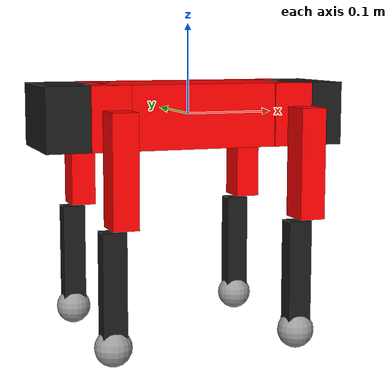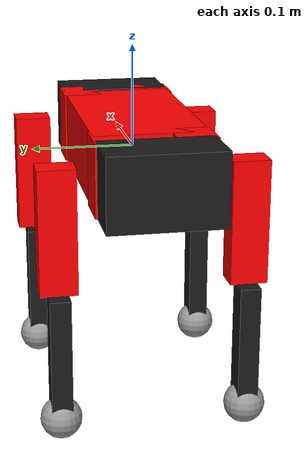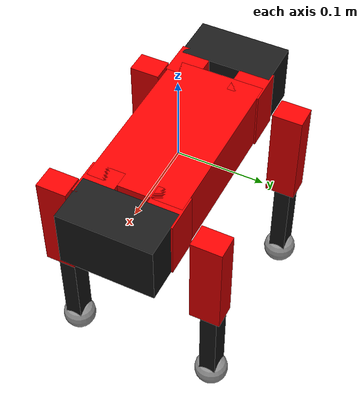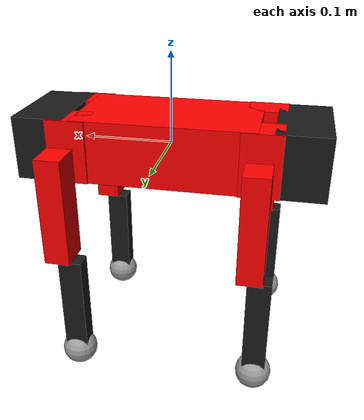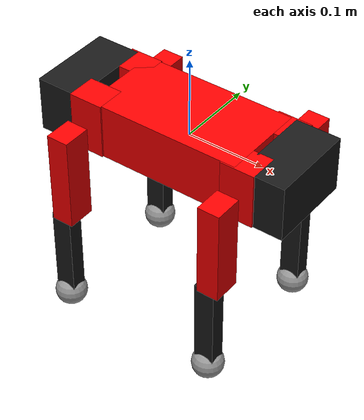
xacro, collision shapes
<?xml version="1.0" ?>
<!-- |    This document was autogenerated by xacro from spotmicroean.urdf.xacro        | -->
<!-- |    EDITING THIS FILE BY HAND IS NOT RECOMMENDED                                 | -->
<robot name="SpotMicroAI">
  <material name="red">
    <color rgba="1.0 0.0 0.0 1"/>
  </material>
  <material name="black">
    <color rgba="0.1 0.1 0.1 1"/>
  </material>
  <material name="grey">
    <color rgba="0.6 0.6 0.6 1"/>
  </material>
  <!-- Params -->
  <!-- Macros -->
  <!-- Robot Body -->
  <link name="base_link">
    <visual>
      <geometry>
        <mesh filename="file://$(find old_spot_files)/meshes/stl_ean/STL/Base.STL" scale="0.001 0.001 0.001"/>
      </geometry>
      <material name="red"/>
      <origin rpy="0 0 -1.5707" xyz="-0.135 0.055 -0.032"/>
    </visual>
    <collision>
      <geometry>
        <box size="0.2 0.11 0.07"/>
      </geometry>
      <origin rpy="0 0 0" xyz="0 0 0"/>
    </collision>
    <inertial>
      <mass value="0.94447"/>
      <inertia ixx="0.00387805268" ixy="-0.00003434884" ixz="-0.000016961.6" iyy="0.00109473849" iyz="0.00031562911" izz="0.00409615181"/>
    </inertial>
  </link>
  <link name="rear_link">
    <visual>
      <geometry>
        <mesh filename="file://$(find old_spot_files)/meshes/stl_ean/STL/bottom.STL" scale="0.001 0.001 0.001"/>
      </geometry>
      <origin rpy="0 0 -1.5707" xyz="-0.105 0.055 -0.034"/>
      <material name="black"/>
    </visual>
    <collision>
      <geometry>
        <box size="0.057 0.11 0.07"/>
      </geometry>
      <origin rpy="0 0 0" xyz="0.135 0 0"/>
    </collision>
    <inertial>
      <mass value="0.13415"/>
      <inertia ixx="0.00232587491" ixy="0.00000216754" ixz="-0.00000449969" iyy="0.00028517681" iyz="0.00020709387" izz="0.00238553813"/>
    </inertial>
  </link>
  <joint name="base_rear" type="fixed">
    <parent link="base_link"/>
    <child link="rear_link"/>
  </joint>
  <link name="front_link">
    <visual>
      <geometry>
        <mesh filename="file://$(find old_spot_files)/meshes/stl_ean/STL/top.STL" scale="0.001 0.001 0.001"/>
      </geometry>
      <origin rpy="0 0 -1.5707" xyz="-0.185 0.065 -0.033"/>
      <material name="black"/>
    </visual>
    <collision>
      <geometry>
        <box size="0.058 0.11 0.07"/>
      </geometry>
      <origin rpy="0 0 0" xyz="-0.145 0 0"/>
    </collision>
    <inertial>
      <mass value="0.71111"/>
      <inertia ixx="0.01411887885" ixy="0.00503508247" ixz="0.00329443443" iyy="0.00738644691" iyz="0.0057782151" izz="0.01388095362"/>
    </inertial>
  </link>
  <joint name="base_front" type="fixed">
    <parent link="base_link"/>
    <child link="front_link"/>
  </joint>
  <!-- create Legs -->
  <link name="front_left_shoulder_link">
    <visual>
      <geometry>
        <mesh filename="file://$(find old_spot_files)/meshes/stl_ean/STL/left_fordward_right_backward_shoulder.STL" scale="0.001 0.001 0.001"/>
      </geometry>
      <origin rpy="-1.5707 3.1416 0" xyz="0.028 -0.03 -0.029"/>
      <material name="red"/>
    </visual>
    <collision>
      <geometry>
        <box size="0.044 0.038 0.07"/>
      </geometry>
      <origin rpy="0 0 0" xyz="0 0 0"/>
    </collision>
    <inertial>
      <mass value="0.11427"/>
      <inertia ixx="0.00003172169" ixy="-0.00000014527" ixz="0.00000432731" iyy="0.00005316718" iyz="-0.000000500" izz="0.00006588791"/>
    </inertial>
  </link>
  <link name="front_left_leg_link">
    <visual>
      <geometry>
        <mesh filename="file://$(find old_spot_files)/meshes/stl_ean/STL/left_arm.STL" scale="0.001 0.001 0.001"/>
      </geometry>
      <origin rpy="3.1416 -1.8 0" xyz="-0.02 0.025 -0.132"/>
      <material name="red"/>
    </visual>
    <collision>
      <origin rpy="0.0 0.0 0.0" xyz="0.0 0.0 -0.050"/>
      <geometry>
        <box size="0.028 0.036 0.12"/>
      </geometry>
    </collision>
    <inertial>
      <mass value="0.1942"/>
      <inertia ixx="0.00020999903" ixy="0.00033247456" ixz="0.0002163401" iyy="0.00136287772" iyz="0.00006388282" izz="0.00146174584"/>
    </inertial>
  </link>
  <link name="front_left_foot_link">
    <visual>
      <geometry>
        <mesh filename="file://$(find old_spot_files)/meshes/stl_ean/STL/left_wrist.STL" scale="0.001 0.001 0.001"/>
      </geometry>
      <origin rpy="1.5708 -1.5708 0" xyz="0.023 0.018 -.133"/>
      <material name="black"/>
    </visual>
    <collision>
      <geometry>
        <box size="0.026 0.020 0.115"/>
      </geometry>
      <origin rpy="0.0 0.0 0.0" xyz="0.0 0.0 -0.050"/>
    </collision>
    <inertial>
      <mass value="0.1452"/>
      <inertia ixx="0.00007223092" ixy="0.00001951089" ixz="0.00001265811" iyy="0.00027840078" iyz="0.00002203829" izz="0.00028998349"/>
    </inertial>
  </link>
  <link name="front_left_toe_link">
    <visual>
      <geometry>
        <mesh filename="file://$(find old_spot_files)/meshes/stl_ean/STL/Foot_Tip.STL" scale="0.001 0.001 0.001"/>
      </geometry>
      <origin rpy="0 2.35 0" xyz="0.00 0 0"/>
      <material name="grey"/>
    </visual>
    <collision>
      <geometry>
        <sphere radius="0.02"/>
      </geometry>
      <origin rpy="0 0 0" xyz="0 0 0"/>
      <contact_coefficients mu="1.1"/>
    </collision>
    <inertial>
      <mass value="0.0"/>
      <inertia ixx="0.0" ixy="0.0" ixz="0.0" iyy="0.0" iyz="0.0" izz="0.0"/>
    </inertial>
  </link>

  <joint name="joint_front_left_shoulder" type="revolute">
    <parent link="base_link"/>
    <child link="front_left_shoulder_link"/>
    <axis xyz="1 0 0"/>
    <origin rpy="0 0 0" xyz="-0.104 -0.038 0"/>
    <limit effort="1000.0" lower="-0.548" upper="0.548" velocity="0.7"/>
    <dynamics damping="0.0" friction="0.5"/>
  </joint>
  <joint name="joint_front_left_leg" type="revolute">
    <parent link="front_left_shoulder_link"/>
    <child link="front_left_leg_link"/>
    <axis xyz="0 1 0"/>
    <origin rpy="0 0 0" xyz="0 -0.052 0"/>
    <limit effort="1000.0" lower="-2.666" upper="1.548" velocity="0.5"/>
    <dynamics damping="0.0" friction="0.0"/>
  </joint>
  <joint name="joint_front_left_foot" type="revolute">
    <parent link="front_left_leg_link"/>
    <child link="front_left_foot_link"/>
    <axis xyz="0 1 0"/>
    <origin rpy="0 0 0" xyz="-0.01 0 -0.12"/>
    <limit effort="1000.0" lower="-0.1" upper="2.59" velocity="0.5"/>
    <dynamics damping="0.0" friction="0.5"/>
  </joint>
  <joint name="joint_front_left_toe" type="fixed">
    <parent link="front_left_foot_link"/>
    <child link="front_left_toe_link"/>
    <origin xyz="0 0 -0.115"/>
  </joint>

  <link name="front_right_shoulder_link">
    <visual>
      <geometry>
        <mesh filename="file://$(find old_spot_files)/meshes/stl_ean/STL/right_fordward_left_backward_shoulder.STL" scale="0.001 0.001 0.001"/>
      </geometry>
      <origin rpy="1.5707 0 0" xyz="-0.028 0.03 -0.027"/>
      <material name="red"/>
    </visual>
    <collision>
      <geometry>
        <box size="0.044 0.038 0.07"/>
      </geometry>
      <origin rpy="0 0 0" xyz="0 0 0"/>
    </collision>
    <inertial>
      <mass value="0.11427"/>
      <inertia ixx="0.00004878868" ixy="-0.0000003775" ixz="-0.00000017136" iyy="0.00004225848" iyz="-0.000000434" izz="0.00003791423"/>
    </inertial>
  </link>
  <link name="front_right_leg_link">
    <visual>
      <geometry>
        <mesh filename="file://$(find old_spot_files)/meshes/stl_ean/STL/right_arm.STL" scale="0.001 0.001 0.001"/>
      </geometry>
      <origin rpy="3.1416 -1.8 0" xyz="-0.02 0.039 -0.132"/>
      <material name="red"/>
    </visual>
    <collision>
      <origin rpy="0.0 0.0 0.0" xyz="0.0 0.0 -0.050"/>
      <geometry>
        <box size="0.028 0.036 0.12"/>
      </geometry>
    </collision>
    <inertial>
      <mass value="0.19412"/>
      <inertia ixx="0.00010075846" ixy="0.00001174271" ixz="0.00002227477" iyy="0.00028245225" iyz="-0.00000610061" izz="0.00027215429"/>
    </inertial>
  </link>
  <link name="front_right_foot_link">
    <visual>
      <geometry>
        <mesh filename="file://$(find old_spot_files)/meshes/stl_ean/STL/right_wrist.STL" scale="0.001 0.001 0.001"/>
      </geometry>
      <origin rpy="-1.5708 -1.5708 0" xyz="-0.013 -0.018 -.133"/>
      <material name="black"/>
    </visual>
    <collision>
      <geometry>
        <box size="0.026 0.020 0.115"/>
      </geometry>
      <origin rpy="0.0 0.0 0.0" xyz="0.0 0.0 -0.050"/>
    </collision>
    <inertial>
      <mass value="0.14521"/>
      <inertia ixx="0.00003908063" ixy="-0.00000081436" ixz="0.00003886203" iyy="0.0003689475" iyz="-0.00000004347" izz="0.00034737965"/>
    </inertial>
  </link>
  <link name="front_right_toe_link">
    <visual>
      <geometry>
        <mesh filename="file://$(find old_spot_files)/meshes/stl_ean/STL/Foot_Tip.STL" scale="0.001 0.001 0.001"/>
      </geometry>
      <origin rpy="0 2.35 0" xyz="0.00 0 0"/>
      <material name="grey"/>
    </visual>
    <collision>
      <geometry>
        <sphere radius="0.02"/>
      </geometry>
      <origin rpy="0 0 0" xyz="0 0 0"/>
      <contact_coefficients mu="1.1"/>
    </collision>
    <inertial>
      <mass value="0.0"/>
      <inertia ixx="0.0" ixy="0.0" ixz="0.0" iyy="0.0" iyz="0.0" izz="0.0"/>
    </inertial>
  </link>

  <joint name="joint_front_right_shoulder" type="revolute">
    <parent link="base_link"/>
    <child link="front_right_shoulder_link"/>
    <axis xyz="1 0 0"/>
    <origin rpy="0 0 0" xyz="-0.104 0.038 0"/>
    <limit effort="1000.0" lower="-0.548" upper="0.548" velocity="0.7"/>
    <dynamics damping="0.0" friction="0.5"/>
  </joint>
  <joint name="joint_front_right_leg" type="revolute">
    <parent link="front_right_shoulder_link"/>
    <child link="front_right_leg_link"/>
    <axis xyz="0 1 0"/>
    <origin rpy="0 0 0" xyz="0 0.052 0"/>
    <limit effort="1000.0" lower="-2.666" upper="1.548" velocity="0.5"/>
    <dynamics damping="0.0" friction="0.0"/>
  </joint>
  <joint name="joint_front_right_foot" type="revolute">
    <parent link="front_right_leg_link"/>
    <child link="front_right_foot_link"/>
    <axis xyz="0 1 0"/>
    <origin rpy="0 0 0" xyz="-0.01 0 -0.12"/>
    <limit effort="1000.0" lower="-0.1" upper="2.59" velocity="0.5"/>
    <dynamics damping="0.0" friction="0.5"/>
  </joint>
  <joint name="joint_front_right_toe" type="fixed">
    <parent link="front_right_foot_link"/>
    <child link="front_right_toe_link"/>
    <origin xyz="0 0 -0.115"/>
  </joint>

  <link name="rear_left_shoulder_link">
    <visual>
      <geometry>
        <mesh filename="file://$(find old_spot_files)/meshes/stl_ean/STL/left_fordward_right_backward_shoulder.STL" scale="0.001 0.001 0.001"/>
      </geometry>
      <origin rpy="-1.5707 3.1416 0" xyz="0.028 -0.03 -0.029"/>
      <material name="red"/>
    </visual>
    <collision>
      <geometry>
        <box size="0.044 0.038 0.07"/>
      </geometry>
      <origin rpy="0 0 0" xyz="0 0 0"/>
    </collision>
    <inertial>
      <mass value="0.11427"/>
      <inertia ixx="0.00003172169" ixy="-0.00000014527" ixz="0.00000432731" iyy="0.00005316718" iyz="-0.000000500" izz="0.00006588791"/>
    </inertial>
  </link>
  <link name="rear_left_leg_link">
    <visual>
      <geometry>
        <mesh filename="file://$(find old_spot_files)/meshes/stl_ean/STL/left_arm.STL" scale="0.001 0.001 0.001"/>
      </geometry>
      <origin rpy="3.1416 -1.8 0" xyz="-0.02 0.025 -0.132"/>
      <material name="red"/>
    </visual>
    <collision>
      <origin rpy="0.0 0.0 0.0" xyz="0.0 0.0 -0.050"/>
      <geometry>
        <box size="0.028 0.036 0.12"/>
      </geometry>
    </collision>
    <inertial>
      <mass value="0.1942"/>
      <inertia ixx="0.00020999903" ixy="0.00033247456" ixz="0.0002163401" iyy="0.00136287772" iyz="0.00006388282" izz="0.00146174584"/>
    </inertial>
  </link>
  <link name="rear_left_foot_link">
    <visual>
      <geometry>
        <mesh filename="file://$(find old_spot_files)/meshes/stl_ean/STL/left_wrist.STL" scale="0.001 0.001 0.001"/>
      </geometry>
      <origin rpy="1.5708 -1.5708 0" xyz="0.023 0.018 -.133"/>
      <material name="black"/>
    </visual>
    <collision>
      <geometry>
        <box size="0.026 0.020 0.115"/>
      </geometry>
      <origin rpy="0.0 0.0 0.0" xyz="0.0 0.0 -0.050"/>
    </collision>
    <inertial>
      <mass value="0.1452"/>
      <inertia ixx="0.00007223092" ixy="0.00001951089" ixz="0.00001265811" iyy="0.00027840078" iyz="0.00002203829" izz="0.00028998349"/>
    </inertial>
  </link>
  <link name="rear_left_toe_link">
    <visual>
      <geometry>
        <mesh filename="file://$(find old_spot_files)/meshes/stl_ean/STL/Foot_Tip.STL" scale="0.001 0.001 0.001"/>
      </geometry>
      <origin rpy="0 2.35 0" xyz="0.00 0 0"/>
      <material name="grey"/>
    </visual>
    <collision>
      <geometry>
        <sphere radius="0.02"/>
      </geometry>
      <origin rpy="0 0 0" xyz="0 0 0"/>
      <contact_coefficients mu="1.1"/>
    </collision>
    <inertial>
      <mass value="0.0"/>
      <inertia ixx="0.0" ixy="0.0" ixz="0.0" iyy="0.0" iyz="0.0" izz="0.0"/>
    </inertial>
  </link>

  <joint name="joint_rear_left_shoulder" type="revolute">
    <parent link="base_link"/>
    <child link="rear_left_shoulder_link"/>
    <axis xyz="1 0 0"/>
    <origin rpy="0 0 0" xyz="0.104 -0.038 0"/>
    <limit effort="1000.0" lower="-0.548" upper="0.548" velocity="0.7"/>
    <dynamics damping="0.0" friction="0.5"/>
  </joint>
  <joint name="joint_rear_left_leg" type="revolute">
    <parent link="rear_left_shoulder_link"/>
    <child link="rear_left_leg_link"/>
    <axis xyz="0 1 0"/>
    <origin rpy="0 0 0" xyz="0 -0.052 0"/>
    <limit effort="1000.0" lower="-2.666" upper="1.548" velocity="0.5"/>
    <dynamics damping="0.0" friction="0.0"/>
  </joint>
  <joint name="joint_rear_left_foot" type="revolute">
    <parent link="rear_left_leg_link"/>
    <child link="rear_left_foot_link"/>
    <axis xyz="0 1 0"/>
    <origin rpy="0 0 0" xyz="-0.01 0 -0.12"/>
    <limit effort="1000.0" lower="-0.1" upper="2.59" velocity="0.5"/>
    <dynamics damping="0.0" friction="0.5"/>
  </joint>
  <joint name="joint_rear_left_toe" type="fixed">
    <parent link="rear_left_foot_link"/>
    <child link="rear_left_toe_link"/>
    <origin xyz="0 0 -0.115"/>
  </joint>

  <link name="rear_right_shoulder_link">
    <visual>
      <geometry>
        <mesh filename="file://$(find old_spot_files)/meshes/stl_ean/STL/right_fordward_left_backward_shoulder.STL" scale="0.001 0.001 0.001"/>
      </geometry>
      <origin rpy="1.5707 0 0" xyz="-0.028 0.03 -0.027"/>
      <material name="red"/>
    </visual>
    <collision>
      <geometry>
        <box size="0.044 0.038 0.07"/>
      </geometry>
      <origin rpy="0 0 0" xyz="0 0 0"/>
    </collision>
    <inertial>
      <mass value="0.11427"/>
      <inertia ixx="0.00004878868" ixy="-0.0000003775" ixz="-0.00000017136" iyy="0.00004225848" iyz="-0.000000434" izz="0.00003791423"/>
    </inertial>
  </link>
  <link name="rear_right_leg_link">
    <visual>
      <geometry>
        <mesh filename="file://$(find old_spot_files)/meshes/stl_ean/STL/right_arm.STL" scale="0.001 0.001 0.001"/>
      </geometry>
      <origin rpy="3.1416 -1.8 0" xyz="-0.02 0.039 -0.132"/>
      <material name="red"/>
    </visual>
    <collision>
      <origin rpy="0.0 0.0 0.0" xyz="0.0 0.0 -0.050"/>
      <geometry>
        <box size="0.028 0.036 0.12"/>
      </geometry>
    </collision>
    <inertial>
      <mass value="0.19412"/>
      <inertia ixx="0.00010075846" ixy="0.00001174271" ixz="0.00002227477" iyy="0.00028245225" iyz="-0.00000610061" izz="0.00027215429"/>
    </inertial>
  </link>
  <link name="rear_right_foot_link">
    <visual>
      <geometry>
        <mesh filename="file://$(find old_spot_files)/meshes/stl_ean/STL/right_wrist.STL" scale="0.001 0.001 0.001"/>
      </geometry>
      <origin rpy="-1.5708 -1.5708 0" xyz="-0.013 -0.018 -.133"/>
      <material name="black"/>
    </visual>
    <collision>
      <geometry>
        <box size="0.026 0.020 0.115"/>
      </geometry>
      <origin rpy="0.0 0.0 0.0" xyz="0.0 0.0 -0.050"/>
    </collision>
    <inertial>
      <mass value="0.14521"/>
      <inertia ixx="0.00003908063" ixy="-0.00000081436" ixz="0.00003886203" iyy="0.0003689475" iyz="-0.00000004347" izz="0.00034737965"/>
    </inertial>
  </link>
  <link name="rear_right_toe_link">
    <visual>
      <geometry>
        <mesh filename="file://$(find old_spot_files)/meshes/stl_ean/STL/Foot_Tip.STL" scale="0.001 0.001 0.001"/>
      </geometry>
      <origin rpy="0 2.35 0" xyz="0.00 0 0"/>
      <material name="grey"/>
    </visual>
    <collision>
      <geometry>
        <sphere radius="0.02"/>
      </geometry>
      <origin rpy="0 0 0" xyz="0 0 0"/>
      <contact_coefficients mu="1.1"/>
    </collision>
    <inertial>
      <mass value="0.0"/>
      <inertia ixx="0.0" ixy="0.0" ixz="0.0" iyy="0.0" iyz="0.0" izz="0.0"/>
    </inertial>
  </link>

  <joint name="joint_rear_right_shoulder" type="revolute">
    <parent link="base_link"/>
    <child link="rear_right_shoulder_link"/>
    <axis xyz="1 0 0"/>
    <origin rpy="0 0 0" xyz="0.104 0.038 0"/>
    <limit effort="1000.0" lower="-0.548" upper="0.548" velocity="0.7"/>
    <dynamics damping="0.0" friction="0.5"/>
  </joint>
  <joint name="joint_rear_right_leg" type="revolute">
    <parent link="rear_right_shoulder_link"/>
    <child link="rear_right_leg_link"/>
    <axis xyz="0 1 0"/>
    <origin rpy="0 0 0" xyz="0 0.052 0"/>
    <limit effort="1000.0" lower="-2.666" upper="1.548" velocity="0.5"/>
    <dynamics damping="0.0" friction="0.0"/>
  </joint>
  <joint name="joint_rear_right_foot" type="revolute">
    <parent link="rear_right_leg_link"/>
    <child link="rear_right_foot_link"/>
    <axis xyz="0 1 0"/>
    <origin rpy="0 0 0" xyz="-0.01 0 -0.12"/>
    <limit effort="1000.0" lower="-0.1" upper="2.59" velocity="0.5"/>
    <dynamics damping="0.0" friction="0.5"/>
  </joint>
  <joint name="joint_rear_right_toe" type="fixed">
    <parent link="rear_right_foot_link"/>
    <child link="rear_right_toe_link"/>
    <origin xyz="0 0 -0.115"/>
  </joint>

  <!-- Gazebo-->
  <gazebo reference="base_link">
    <material>Gazebo/FlatBlack</material>
  </gazebo>
  <gazebo reference="rear_link">
    <material>Gazebo/Yellow</material>
  </gazebo>

  <gazebo reference="front_link">
    <material>Gazebo/Yellow</material>
  </gazebo>

  <gazebo reference="lidar_link">
    <sensor name="hokuyo" type="ray">
      <always_on>true</always_on>
      <update_rate>30</update_rate>
      <pose>0 0 0 0 0 0</pose>
      <visualize>false</visualize>
      <ray>
        <scan>
          <horizontal>
            <samples>1040</samples>
            <resolution>1</resolution>
            <min_angle>2.2689280275926285</min_angle>
            <max_angle>-2.2689280275926285</max_angle>
          </horizontal>
        </scan>
        <range>
          <min>0.2</min>
          <max>30.0</max>
          <resolution>0.01</resolution>
        </range>
        <noise>
          <type>gaussian</type>
          <mean>0.0</mean>
          <stddev>0.004</stddev>
        </noise>
      </ray>
      <plugin filename="libgazebo_ros_ray_sensor.so" name="gazebo_ros_hokuyo_controller">
        <ros>
          <namespace>lidar_link</namespace>
          <argument>~/out:=scan</argument>
        </ros>
        <!-- Set output to sensor_msgs/PointCloud to get same output type as gazebo_ros_block_laser -->
        <output_type>sensor_msgs/LaserScan</output_type>
        <!-- min_intensity instead of hokuyoMinIntensity -->
        <min_intensity>100.0</min_intensity>
      </plugin>
    </sensor>
  </gazebo>

  <gazebo reference="lidar_link">
    <material>Gazebo/Black</material>
  </gazebo>

  <gazebo reference="imu_link">
    <sensor name="imu_controller" type="imu">
      <always_on>true</always_on>
      <update_rate>50</update_rate>
      <plugin filename="libgazebo_ros_imu_sensor.so" name="gazebo_ros_imu_sensor">
        <ros>
          <namespace>/imu</namespace>
          <argument>~/out:=data</argument>
        </ros>
      </plugin>
    </sensor>
  </gazebo>

  <gazebo reference="front_left_shoulder_link">
    <material>Gazebo/Black</material>
  </gazebo>
  <gazebo reference="front_left_leg_link_cover">
    <material>Gazebo/Yellow</material>
  </gazebo>
  <gazebo reference="front_left_leg_link">
    <material>Gazebo/Black</material>
  </gazebo>
  <gazebo reference="front_left_foot_link">
    <kp>10000000000.0</kp>
    <kd>100.0</kd>
    <mu1>0.8</mu1>
    <mu2>0.8</mu2>
    <minDepth>0.05</minDepth>
    <material>Gazebo/Black</material>
  </gazebo>
  <gazebo reference="front_left_toe_link">
    <material>Gazebo/Grey</material>
  </gazebo>

  <gazebo reference="front_right_shoulder_link">
    <material>Gazebo/Black</material>
  </gazebo>
  <gazebo reference="front_right_leg_link_cover">
    <material>Gazebo/Yellow</material>
  </gazebo>
  <gazebo reference="front_right_leg_link">
    <material>Gazebo/Black</material>
  </gazebo>
  <gazebo reference="front_right_foot_link">
    <kp>10000000000.0</kp>
    <kd>100.0</kd>
    <mu1>0.8</mu1>
    <mu2>0.8</mu2>
    <minDepth>0.05</minDepth>
    <material>Gazebo/Black</material>
  </gazebo>
  <gazebo reference="front_right_toe_link">
    <material>Gazebo/Grey</material>
  </gazebo>

  <gazebo reference="rear_left_shoulder_link">
    <material>Gazebo/Black</material>
  </gazebo>
  <gazebo reference="rear_left_leg_link_cover">
    <material>Gazebo/Yellow</material>
  </gazebo>
  <gazebo reference="rear_left_leg_link">
    <material>Gazebo/Black</material>
  </gazebo>
  <gazebo reference="rear_left_foot_link">
    <kp>10000000000.0</kp>
    <kd>100.0</kd>
    <mu1>0.8</mu1>
    <mu2>0.8</mu2>
    <minDepth>0.05</minDepth>
    <material>Gazebo/Black</material>
  </gazebo>
  <gazebo reference="rear_left_toe_link">
    <material>Gazebo/Grey</material>
  </gazebo>

  <gazebo reference="rear_right_shoulder_link">
    <material>Gazebo/Black</material>
  </gazebo>
  <gazebo reference="rear_right_leg_link_cover">
    <material>Gazebo/Yellow</material>
  </gazebo>
  <gazebo reference="rear_right_leg_link">
    <material>Gazebo/Black</material>
  </gazebo>
  <gazebo reference="rear_right_foot_link">
    <kp>10000000000.0</kp>
    <kd>100.0</kd>
    <mu1>0.8</mu1>
    <mu2>0.8</mu2>
    <minDepth>0.05</minDepth>
    <material>Gazebo/Black</material>
  </gazebo>
  <gazebo reference="rear_right_toe_link">
    <material>Gazebo/Grey</material>
  </gazebo>

  <ros2_control name="front_left_shoulder_control" type="system">
    <hardware>
      <plugin>gazebo_ros2_control/GazeboSystem</plugin>
    </hardware>
    <joint name="front_left_shoulder">
      <command_interface name="effort"/>
      <state_interface name="position"/>
      <state_interface name="velocity"/>
    </joint>
  </ros2_control>
  <ros2_control name="front_left_leg_control" type="system">
    <hardware>
      <plugin>gazebo_ros2_control/GazeboSystem</plugin>
    </hardware>
    <joint name="front_left_leg">
      <command_interface name="effort"/>
      <state_interface name="position"/>
      <state_interface name="velocity"/>
    </joint>
  </ros2_control>
  <ros2_control name="front_left_foot_control" type="system">
    <hardware>
      <plugin>gazebo_ros2_control/GazeboSystem</plugin>
    </hardware>
    <joint name="front_left_foot">
      <command_interface name="effort"/>
      <state_interface name="position"/>
      <state_interface name="velocity"/>
    </joint>
  </ros2_control>

  <ros2_control name="front_right_shoulder_control" type="system">
    <hardware>
      <plugin>gazebo_ros2_control/GazeboSystem</plugin>
    </hardware>
    <joint name="front_right_shoulder">
      <command_interface name="effort"/>
      <state_interface name="position"/>
      <state_interface name="velocity"/>
    </joint>
  </ros2_control>
  <ros2_control name="front_right_leg_control" type="system">
    <hardware>
      <plugin>gazebo_ros2_control/GazeboSystem</plugin>
    </hardware>
    <joint name="front_right_leg">
      <command_interface name="effort"/>
      <state_interface name="position"/>
      <state_interface name="velocity"/>
    </joint>
  </ros2_control>
  <ros2_control name="front_right_foot_control" type="system">
    <hardware>
      <plugin>gazebo_ros2_control/GazeboSystem</plugin>
    </hardware>
    <joint name="front_right_foot">
      <command_interface name="effort"/>
      <state_interface name="position"/>
      <state_interface name="velocity"/>
    </joint>
  </ros2_control>

  <ros2_control name="rear_left_shoulder_control" type="system">
    <hardware>
      <plugin>gazebo_ros2_control/GazeboSystem</plugin>
    </hardware>
    <joint name="rear_left_shoulder">
      <command_interface name="effort"/>
      <state_interface name="position"/>
      <state_interface name="velocity"/>
    </joint>
  </ros2_control>
  <ros2_control name="rear_left_leg_control" type="system">
    <hardware>
      <plugin>gazebo_ros2_control/GazeboSystem</plugin>
    </hardware>
    <joint name="rear_left_leg">
      <command_interface name="effort"/>
      <state_interface name="position"/>
      <state_interface name="velocity"/>
    </joint>
  </ros2_control>
  <ros2_control name="rear_left_foot_control" type="system">
    <hardware>
      <plugin>gazebo_ros2_control/GazeboSystem</plugin>
    </hardware>
    <joint name="rear_left_foot">
      <command_interface name="effort"/>
      <state_interface name="position"/>
      <state_interface name="velocity"/>
    </joint>
  </ros2_control>

  <ros2_control name="rear_right_shoulder_control" type="system">
    <hardware>
      <plugin>gazebo_ros2_control/GazeboSystem</plugin>
    </hardware>
    <joint name="rear_right_shoulder">
      <command_interface name="effort"/>
      <state_interface name="position"/>
      <state_interface name="velocity"/>
    </joint>
  </ros2_control>
  <ros2_control name="rear_right_leg_control" type="system">
    <hardware>
      <plugin>gazebo_ros2_control/GazeboSystem</plugin>
    </hardware>
    <joint name="rear_right_leg">
      <command_interface name="effort"/>
      <state_interface name="position"/>
      <state_interface name="velocity"/>
    </joint>
  </ros2_control>
  <ros2_control name="rear_right_foot_control" type="system">
    <hardware>
      <plugin>gazebo_ros2_control/GazeboSystem</plugin>
    </hardware>
    <joint name="rear_right_foot">
      <command_interface name="effort"/>
      <state_interface name="position"/>
      <state_interface name="velocity"/>
    </joint>
  </ros2_control>

  <gazebo>
    <plugin filename="libgazebo_ros_p3d.so" name="p3d_base_controller">
      <ros>
        <namespace></namespace>
        <argument>odom:=odom/ground_truth</argument>
      </ros>
      <body_name>base_link</body_name>
      <frame_name>world</frame_name>
      <update_rate>10.0</update_rate>
      <xyz_offset>0 0 0</xyz_offset>
      <rpy_offset>0 0 0</rpy_offset>
      <gaussian_noise>0.01</gaussian_noise>
    </plugin>
  </gazebo>
  <gazebo>
    <plugin filename="libgazebo_ros2_control.so" name="gazebo_ros2_control">
      <parameters>$(find champ_gazebo)/config/spot_control.yaml</parameters>
    </plugin>
  </gazebo>

</robot>
